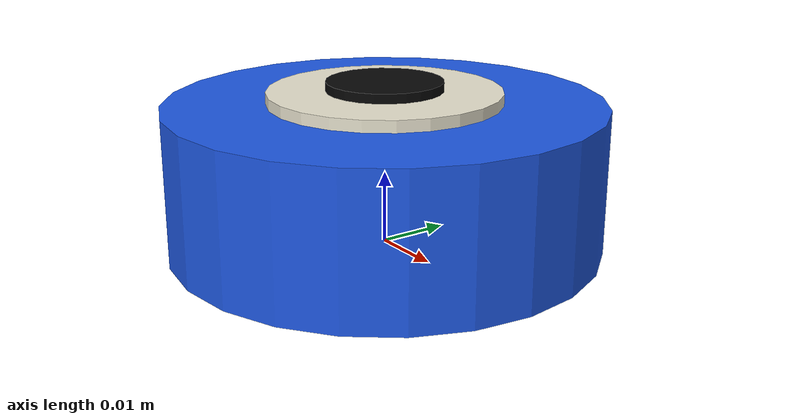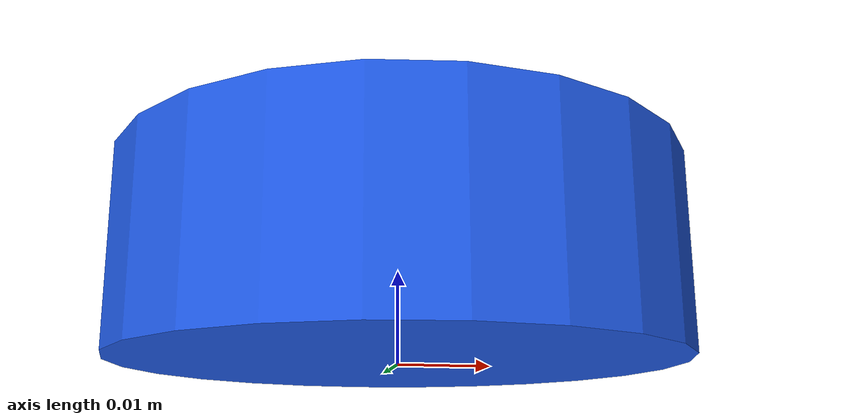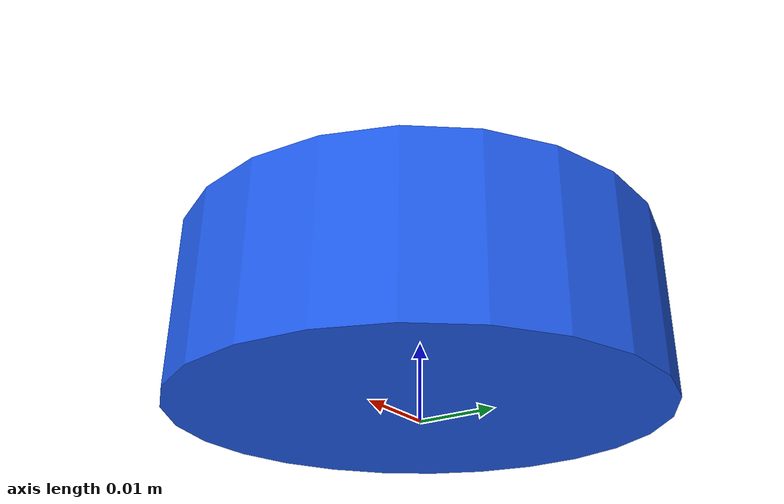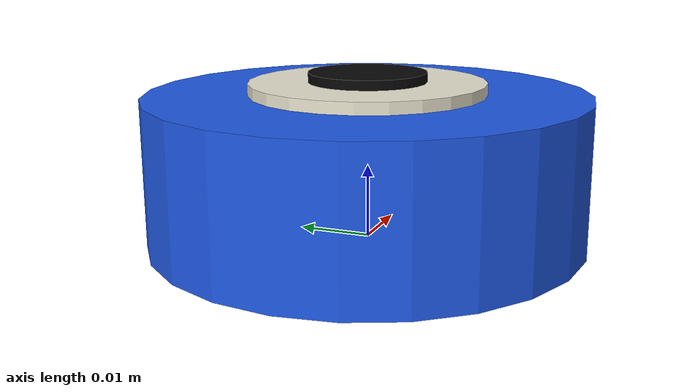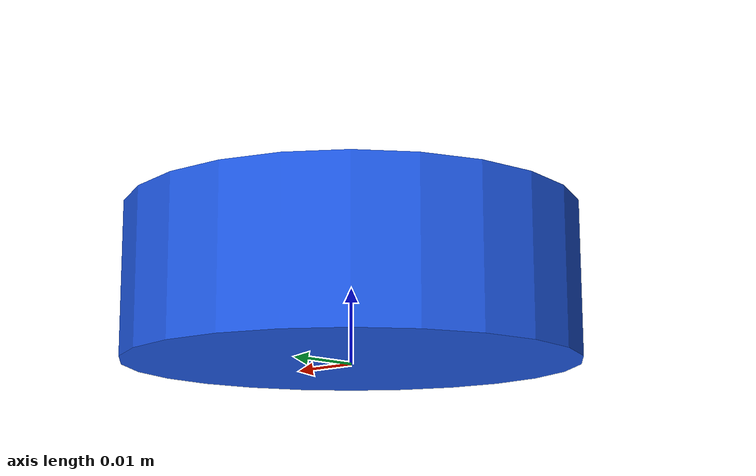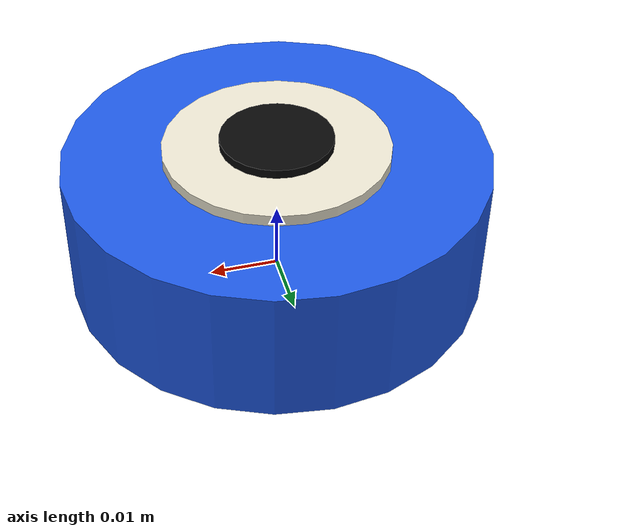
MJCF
<mujoco model="tape_roll">
  <asset>
    <material name="tape_blue" rgba="0.12 0.35 0.90 1" specular="0.2" shininess="0.3" />
    <material name="tape_paper" rgba="0.92 0.90 0.82 1" specular="0.1" shininess="0.1" />
    <material name="collision_invisible" rgba="0.8 0.8 0.8 0" />
  </asset>
  <worldbody>
    <body>
      <body name="object">
        <geom name="tape_collision" type="box" pos="0 0 0.010" size="0.030 0.030 0.010" material="collision_invisible" group="0" friction="1.5 0.6 0.1" solref="0.015 1" solimp="0.90 0.95 0.002" />
        <geom name="tape_outer_visual" type="cylinder" pos="0 0 0.010" size="0.030 0.010" material="tape_blue" group="1" contype="0" conaffinity="0" density="1" />
        <geom name="tape_inner_visual" type="cylinder" pos="0 0 0.0208" size="0.016 0.0008" material="tape_paper" group="1" contype="0" conaffinity="0" density="1" />
        <geom name="tape_hole_visual" type="cylinder" pos="0 0 0.0222" size="0.008 0.0007" rgba="0.03 0.03 0.03 1" group="1" contype="0" conaffinity="0" density="1" />
      </body>
      <site rgba="0 0 0 0" size="0.005" pos="0 0 0.000" name="bottom_site" />
      <site rgba="0 0 0 0" size="0.005" pos="0 0 0.023" name="top_site" />
      <site rgba="0 0 0 0" size="0.005" pos="0.030 0.030 0.010" name="horizontal_radius_site" />
    </body>
  </worldbody>
</mujoco>
